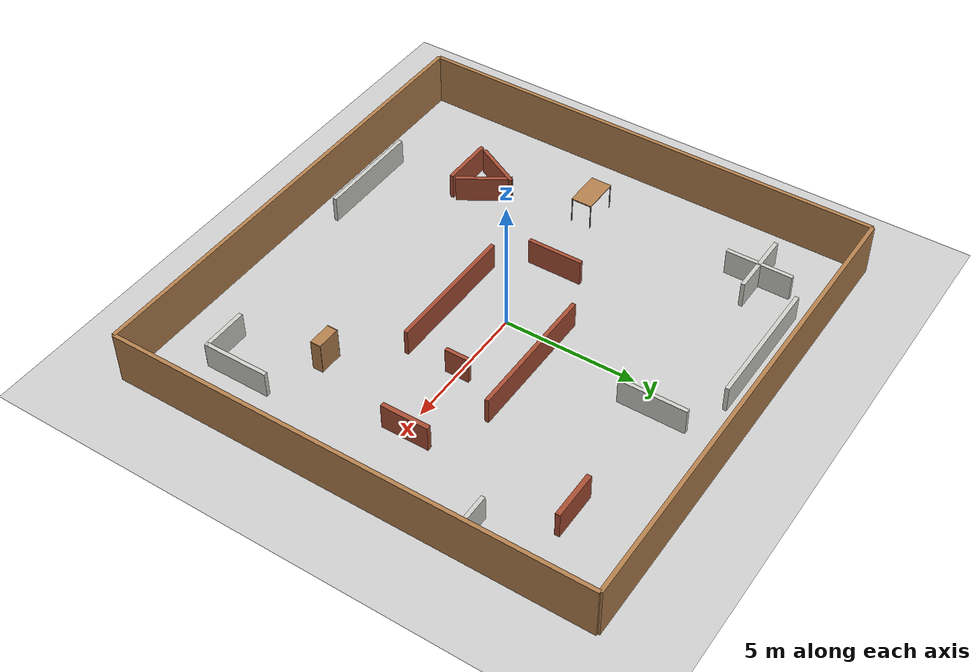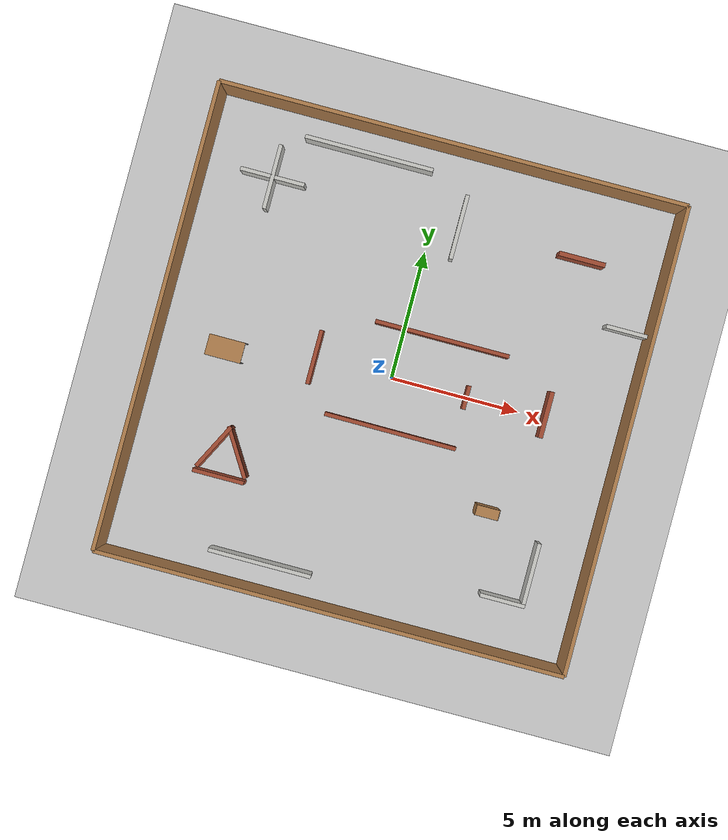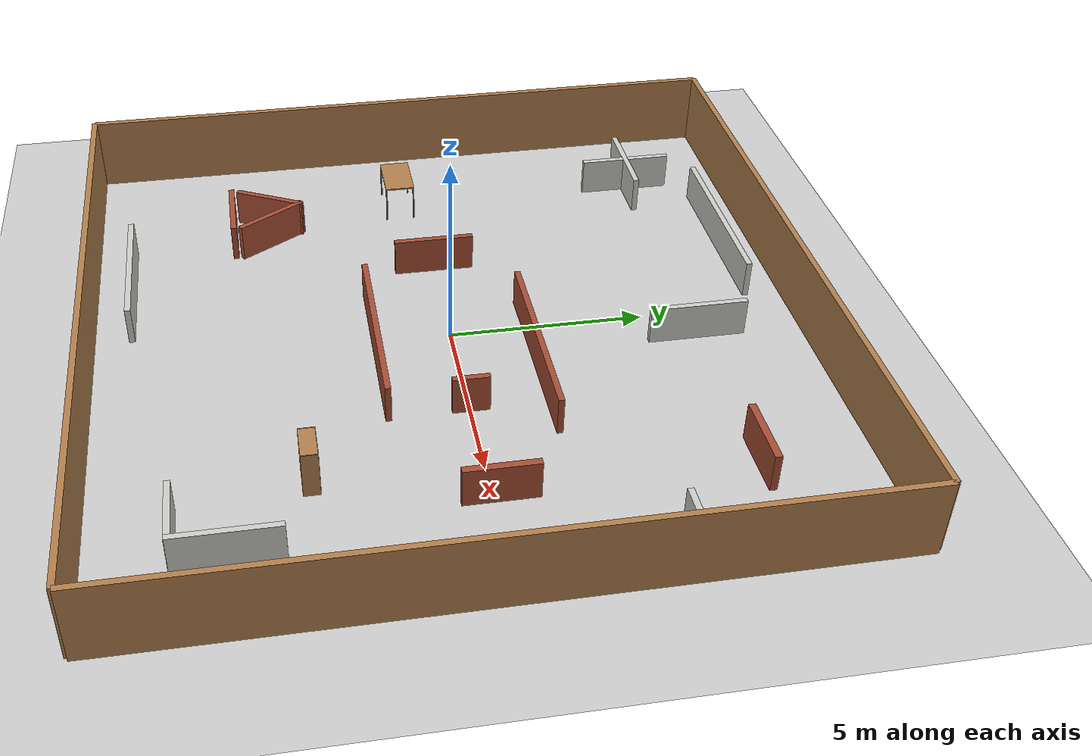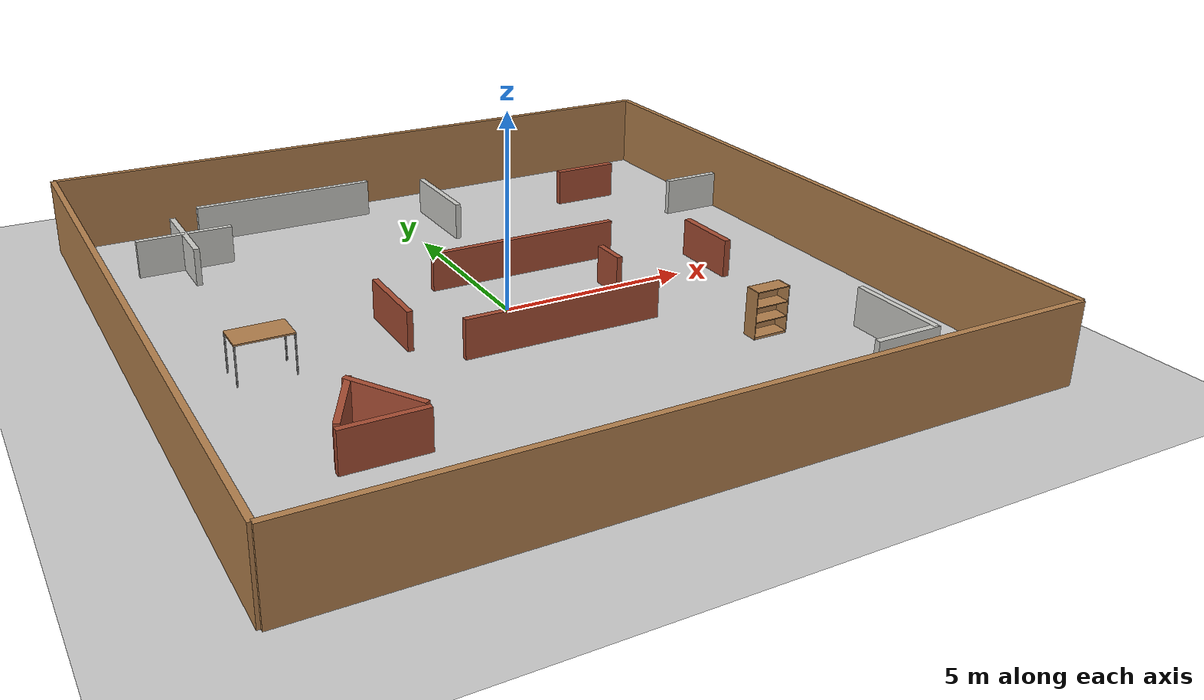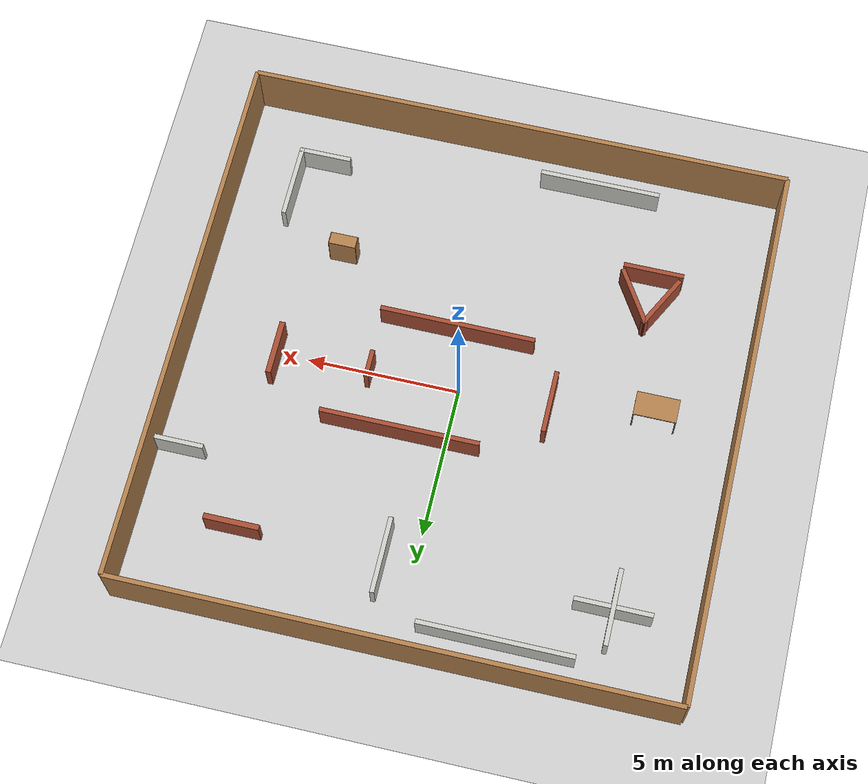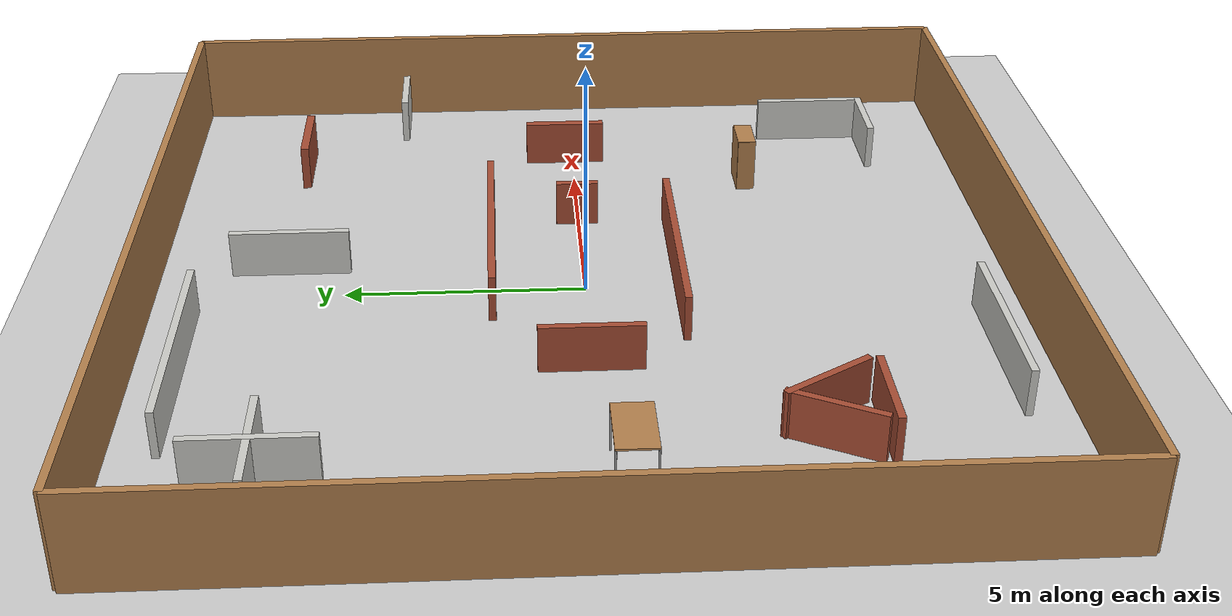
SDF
<sdf version="1.6">
 <world name="default">
  <light name="sun" type="directional">
   <pose>0 0 10 0 -0 0</pose>
   <diffuse>0.8 0.8 0.8 1</diffuse>
   <specular>0.1 0.1 0.1 1</specular>
   <attenuation>
    <range>1000</range>
    <constant>0.9</constant>
    <linear>0.01</linear>
    <quadratic>0.001</quadratic>
   </attenuation>
   <direction>-0.5 0.5 -1</direction>
  </light>
  <model name="ground_plane">
   <static>1</static>
   <link name="link">
    <collision name="collision">
     <geometry><plane><normal>0 0 1</normal><size>100 100</size></plane></geometry>
     <surface><friction><ode><mu>100</mu><mu2>50</mu2></ode></friction></surface>
    </collision>
    <visual name="visual">
     <cast_shadows>0</cast_shadows>
     <geometry><plane><normal>0 0 1</normal><size>100 100</size></plane></geometry>
     <material>
      <script><uri>file://media/materials/scripts/gazebo.material</uri><name>Gazebo/Grey</name></script>
     </material>
    </visual>
   </link>
  </model>
  <gravity>0 0 -9.8</gravity>
  <magnetic_field>6e-06 2.3e-05 -4.2e-05</magnetic_field>
  <atmosphere type="adiabatic"/>
  <physics name="default_physics" default="0" type="ode">
   <max_step_size>0.001</max_step_size>
   <real_time_factor>1</real_time_factor>
   <real_time_update_rate>1000</real_time_update_rate>
  </physics>
  <scene><ambient>0.4 0.4 0.4 1</ambient><background>0.7 0.7 0.7 1</background><shadows>1</shadows></scene>
  <spherical_coordinates>
   <surface_model>EARTH_WGS84</surface_model>
   <latitude_deg>0</latitude_deg>
   <longitude_deg>0</longitude_deg>
   <elevation>0</elevation>
   <heading_deg>0</heading_deg>
  </spherical_coordinates>
  <model name="box">
   <link name="Wall_15">
    <pose>1.475783 1.940209 0 0 -0 0</pose>
    <visual name="Wall_15_Visual">
     <pose>0 0 0.5 0 -0 0</pose>
     <geometry><box><size>5.220829 0.15 1</size></box></geometry>
     <material>
      <script><uri>file://media/materials/scripts/gazebo.material</uri><name>Gazebo/Bricks</name></script>
      <ambient>1 1 1 1</ambient>
      <diffuse>1 1 1 1</diffuse>
      <specular>0.2 0.2 0.2 1</specular>
      <emissive>0 0 0 1</emissive>
     </material>
     <meta><layer>0</layer></meta>
    </visual>
    <collision name="Wall_15_Collision">
     <pose>0 0 0.5 0 -0 0</pose>
     <geometry><box><size>1.2678 0.15 1</size></box></geometry>
     <surface>
      <friction>
       <ode><mu>1</mu><mu2>1</mu2><fdir1>0 0 0</fdir1><slip1>0</slip1><slip2>0</slip2></ode>
       <torsional>
        <coefficient>1</coefficient>
        <patch_radius>0</patch_radius>
        <surface_radius>0</surface_radius>
        <use_patch_radius>1</use_patch_radius>
        <ode><slip>0</slip></ode>
       </torsional>
      </friction>
      <bounce><restitution_coefficient>0</restitution_coefficient><threshold>1e+06</threshold></bounce>
      <contact>
       <collide_without_contact>0</collide_without_contact>
       <collide_without_contact_bitmask>1</collide_without_contact_bitmask>
       <collide_bitmask>1</collide_bitmask>
       <ode>
        <soft_cfm>0</soft_cfm>
        <soft_erp>0.2</soft_erp>
        <kp>1e+13</kp>
        <kd>1</kd>
        <max_vel>0.01</max_vel>
        <min_depth>0</min_depth>
       </ode>
       <bullet>
        <split_impulse>1</split_impulse>
        <split_impulse_penetration_threshold>-0.01</split_impulse_penetration_threshold>
        <soft_cfm>0</soft_cfm>
        <soft_erp>0.2</soft_erp>
        <kp>1e+13</kp>
        <kd>1</kd>
       </bullet>
      </contact>
     </surface>
    </collision>
   </link>
   <link name="Wall_16">
    <pose>2.921350 0.033581 0 0 0 -1.5700</pose>
    <visual name="Wall_16_Visual">
     <pose>0 0 0.5 0 -0 0</pose>
     <geometry><box><size>0.917149 0.15 1</size></box></geometry>
     <material>
      <script><uri>file://media/materials/scripts/gazebo.material</uri><name>Gazebo/Bricks</name></script>
      <ambient>1 1 1 1</ambient>
      <diffuse>1 1 1 1</diffuse>
      <specular>0.2 0.2 0.2 1</specular>
      <emissive>0 0 0 1</emissive>
     </material>
     <meta><layer>0</layer></meta>
    </visual>
    <collision name="Wall_16_Collision">
     <pose>0 0 0.5 0 -0 0</pose>
     <geometry><box><size>0.965005 0.15 1</size></box></geometry>
     <surface>
      <friction>
       <ode><mu>1</mu><mu2>1</mu2><fdir1>0 0 0</fdir1><slip1>0</slip1><slip2>0</slip2></ode>
       <torsional>
        <coefficient>1</coefficient>
        <patch_radius>0</patch_radius>
        <surface_radius>0</surface_radius>
        <use_patch_radius>1</use_patch_radius>
        <ode><slip>0</slip></ode>
       </torsional>
      </friction>
      <bounce><restitution_coefficient>0</restitution_coefficient><threshold>1e+06</threshold></bounce>
      <contact>
       <collide_without_contact>0</collide_without_contact>
       <collide_without_contact_bitmask>1</collide_without_contact_bitmask>
       <collide_bitmask>1</collide_bitmask>
       <ode>
        <soft_cfm>0</soft_cfm>
        <soft_erp>0.2</soft_erp>
        <kp>1e+13</kp>
        <kd>1</kd>
        <max_vel>0.01</max_vel>
        <min_depth>0</min_depth>
       </ode>
       <bullet>
        <split_impulse>1</split_impulse>
        <split_impulse_penetration_threshold>-0.01</split_impulse_penetration_threshold>
        <soft_cfm>0</soft_cfm>
        <soft_erp>0.2</soft_erp>
        <kp>1e+13</kp>
        <kd>1</kd>
       </bullet>
      </contact>
     </surface>
    </collision>
   </link>
   <link name="Wall_17">
    <pose>0.475783 -1.940209 0 0 -0 3.138000</pose>
    <visual name="Wall_17_Visual">
     <pose>0 0 0.5 0 -0 0</pose>
     <geometry><box><size>5.119226 0.15 1</size></box></geometry>
     <material>
      <script><uri>file://media/materials/scripts/gazebo.material</uri><name>Gazebo/Bricks</name></script>
      <ambient>1 1 1 1</ambient>
      <diffuse>1 1 1 1</diffuse>
      <specular>0.2 0.2 0.2 1</specular>
      <emissive>0 0 0 1</emissive>
     </material>
     <meta><layer>0</layer></meta>
    </visual>
    <collision name="Wall_17_Collision">
     <pose>0 0 0.5 0 -0 0</pose>
     <geometry><box><size>1.25 0.15 1</size></box></geometry>
     <surface>
      <friction>
       <ode><mu>1</mu><mu2>1</mu2><fdir1>0 0 0</fdir1><slip1>0</slip1><slip2>0</slip2></ode>
       <torsional>
        <coefficient>1</coefficient>
        <patch_radius>0</patch_radius>
        <surface_radius>0</surface_radius>
        <use_patch_radius>1</use_patch_radius>
        <ode><slip>0</slip></ode>
       </torsional>
      </friction>
      <bounce><restitution_coefficient>0</restitution_coefficient><threshold>1e+06</threshold></bounce>
      <contact>
       <collide_without_contact>0</collide_without_contact>
       <collide_without_contact_bitmask>1</collide_without_contact_bitmask>
       <collide_bitmask>1</collide_bitmask>
       <ode>
        <soft_cfm>0</soft_cfm>
        <soft_erp>0.2</soft_erp>
        <kp>1e+13</kp>
        <kd>1</kd>
        <max_vel>0.01</max_vel>
        <min_depth>0</min_depth>
       </ode>
       <bullet>
        <split_impulse>1</split_impulse>
        <split_impulse_penetration_threshold>-0.01</split_impulse_penetration_threshold>
        <soft_cfm>0</soft_cfm>
        <soft_erp>0.2</soft_erp>
        <kp>1e+13</kp>
        <kd>1</kd>
       </bullet>
      </contact>
     </surface>
    </collision>
   </link>
   <link name="Wall_18">
    <pose>-3.004989 0.029598 0 0 -0 1.5700</pose>
    <visual name="Wall_18_Visual">
     <pose>0 0 0.5 0 -0 0</pose>
     <geometry><box><size>2.101995 0.15 1</size></box></geometry>
     <material>
      <script><uri>file://media/materials/scripts/gazebo.material</uri><name>Gazebo/Bricks</name></script>
      <ambient>1 1 1 1</ambient>
      <diffuse>1 1 1 1</diffuse>
      <specular>0.2 0.2 0.2 1</specular>
      <emissive>0 0 0 1</emissive>
     </material>
     <meta><layer>0</layer></meta>
    </visual>
    <collision name="Wall_18_Collision">
     <pose>0 0 0.5 0 -0 0</pose>
     <geometry><box><size>0.965005 0.15 1</size></box></geometry>
     <surface>
      <friction>
       <ode><mu>1</mu><mu2>1</mu2><fdir1>0 0 0</fdir1><slip1>0</slip1><slip2>0</slip2></ode>
       <torsional>
        <coefficient>1</coefficient>
        <patch_radius>0</patch_radius>
        <surface_radius>0</surface_radius>
        <use_patch_radius>1</use_patch_radius>
        <ode><slip>0</slip></ode>
       </torsional>
      </friction>
      <bounce><restitution_coefficient>0</restitution_coefficient><threshold>1e+06</threshold></bounce>
      <contact>
       <collide_without_contact>0</collide_without_contact>
       <collide_without_contact_bitmask>1</collide_without_contact_bitmask>
       <collide_bitmask>1</collide_bitmask>
       <ode>
        <soft_cfm>0</soft_cfm>
        <soft_erp>0.2</soft_erp>
        <kp>1e+13</kp>
        <kd>1</kd>
        <max_vel>0.01</max_vel>
        <min_depth>0</min_depth>
       </ode>
       <bullet>
        <split_impulse>1</split_impulse>
        <split_impulse_penetration_threshold>-0.01</split_impulse_penetration_threshold>
        <soft_cfm>0</soft_cfm>
        <soft_erp>0.2</soft_erp>
        <kp>1e+13</kp>
        <kd>1</kd>
       </bullet>
      </contact>
     </surface>
    </collision>
   </link>
   <link name="Wall_24">
    <pose>-5.800564 -4.199884 0 0 -0 1.09459</pose>
    <visual name="Wall_24_Visual">
     <pose>0 0 0.5 0 -0 0</pose>
     <geometry><box><size>1.97704 0.15 1</size></box></geometry>
     <material>
      <script><uri>file://media/materials/scripts/gazebo.material</uri><name>Gazebo/Bricks</name></script>
      <ambient>1 1 1 1</ambient>
      <diffuse>1 1 1 1</diffuse>
      <specular>0.2 0.2 0.2 1</specular>
      <emissive>0 0 0 1</emissive>
     </material>
     <meta><layer>0</layer></meta>
    </visual>
    <collision name="Wall_24_Collision">
     <pose>0 0 0.5 0 -0 0</pose>
     <geometry><box><size>1.97704 0.15 1</size></box></geometry>
     <surface>
      <friction>
       <ode><mu>1</mu><mu2>1</mu2><fdir1>0 0 0</fdir1><slip1>0</slip1><slip2>0</slip2></ode>
       <torsional>
        <coefficient>1</coefficient>
        <patch_radius>0</patch_radius>
        <surface_radius>0</surface_radius>
        <use_patch_radius>1</use_patch_radius>
        <ode><slip>0</slip></ode>
       </torsional>
      </friction>
      <bounce><restitution_coefficient>0</restitution_coefficient><threshold>1e+06</threshold></bounce>
      <contact>
       <collide_without_contact>0</collide_without_contact>
       <collide_without_contact_bitmask>1</collide_without_contact_bitmask>
       <collide_bitmask>1</collide_bitmask>
       <ode>
        <soft_cfm>0</soft_cfm>
        <soft_erp>0.2</soft_erp>
        <kp>1e+13</kp>
        <kd>1</kd>
        <max_vel>0.01</max_vel>
        <min_depth>0</min_depth>
       </ode>
       <bullet>
        <split_impulse>1</split_impulse>
        <split_impulse_penetration_threshold>-0.01</split_impulse_penetration_threshold>
        <soft_cfm>0</soft_cfm>
        <soft_erp>0.2</soft_erp>
        <kp>1e+13</kp>
        <kd>1</kd>
       </bullet>
      </contact>
     </surface>
    </collision>
   </link>
   <link name="Wall_25">
    <pose>-4.900564 -4.199884 0 0 0 -1.01325</pose>
    <visual name="Wall_25_Visual">
     <pose>0 0 0.5 0 -0 0</pose>
     <geometry><box><size>2.06356 0.15 1</size></box></geometry>
     <material>
      <script><uri>file://media/materials/scripts/gazebo.material</uri><name>Gazebo/Bricks</name></script>
      <ambient>1 1 1 1</ambient>
      <diffuse>1 1 1 1</diffuse>
      <specular>0.2 0.2 0.2 1</specular>
      <emissive>0 0 0 1</emissive>
     </material>
     <meta><layer>0</layer></meta>
    </visual>
    <collision name="Wall_25_Collision">
     <pose>0 0 0.5 0 -0 0</pose>
     <geometry><box><size>2.06356 0.15 1</size></box></geometry>
     <surface>
      <friction>
       <ode><mu>1</mu><mu2>1</mu2><fdir1>0 0 0</fdir1><slip1>0</slip1><slip2>0</slip2></ode>
       <torsional>
        <coefficient>1</coefficient>
        <patch_radius>0</patch_radius>
        <surface_radius>0</surface_radius>
        <use_patch_radius>1</use_patch_radius>
        <ode><slip>0</slip></ode>
       </torsional>
      </friction>
      <bounce><restitution_coefficient>0</restitution_coefficient><threshold>1e+06</threshold></bounce>
      <contact>
       <collide_without_contact>0</collide_without_contact>
       <collide_without_contact_bitmask>1</collide_without_contact_bitmask>
       <collide_bitmask>1</collide_bitmask>
       <ode>
        <soft_cfm>0</soft_cfm>
        <soft_erp>0.2</soft_erp>
        <kp>1e+13</kp>
        <kd>1</kd>
        <max_vel>0.01</max_vel>
        <min_depth>0</min_depth>
       </ode>
       <bullet>
        <split_impulse>1</split_impulse>
        <split_impulse_penetration_threshold>-0.01</split_impulse_penetration_threshold>
        <soft_cfm>0</soft_cfm>
        <soft_erp>0.2</soft_erp>
        <kp>1e+13</kp>
        <kd>1</kd>
       </bullet>
      </contact>
     </surface>
    </collision>
   </link>
   <link name="Wall_26">
    <pose>-5.350564 -5.249884 0 0 -0 3.14159</pose>
    <visual name="Wall_26_Visual">
     <pose>0 0 0.5 0 -0 0</pose>
     <geometry><box><size>2 0.15 1</size></box></geometry>
     <material>
      <script><uri>file://media/materials/scripts/gazebo.material</uri><name>Gazebo/Bricks</name></script>
      <ambient>1 1 1 1</ambient>
      <diffuse>1 1 1 1</diffuse>
      <specular>0.2 0.2 0.2 1</specular>
      <emissive>0 0 0 1</emissive>
     </material>
     <meta><layer>0</layer></meta>
    </visual>
    <collision name="Wall_26_Collision">
     <pose>0 0 0.5 0 -0 0</pose>
     <geometry><box><size>2 0.15 1</size></box></geometry>
     <surface>
      <friction>
       <ode><mu>1</mu><mu2>1</mu2><fdir1>0 0 0</fdir1><slip1>0</slip1><slip2>0</slip2></ode>
       <torsional>
        <coefficient>1</coefficient>
        <patch_radius>0</patch_radius>
        <surface_radius>0</surface_radius>
        <use_patch_radius>1</use_patch_radius>
        <ode><slip>0</slip></ode>
       </torsional>
      </friction>
      <bounce><restitution_coefficient>0</restitution_coefficient><threshold>1e+06</threshold></bounce>
      <contact>
       <collide_without_contact>0</collide_without_contact>
       <collide_without_contact_bitmask>1</collide_without_contact_bitmask>
       <collide_bitmask>1</collide_bitmask>
       <ode>
        <soft_cfm>0</soft_cfm>
        <soft_erp>0.2</soft_erp>
        <kp>1e+13</kp>
        <kd>1</kd>
        <max_vel>0.01</max_vel>
        <min_depth>0</min_depth>
       </ode>
       <bullet>
        <split_impulse>1</split_impulse>
        <split_impulse_penetration_threshold>-0.01</split_impulse_penetration_threshold>
        <soft_cfm>0</soft_cfm>
        <soft_erp>0.2</soft_erp>
        <kp>1e+13</kp>
        <kd>1</kd>
       </bullet>
      </contact>
     </surface>
    </collision>
   </link>
   <link name="Wall_28">
    <pose>6.200000 -7 0 0 -0 0</pose>
    <visual name="Wall_28_Visual">
     <pose>0 0 0.5 0 -0 0</pose>
     <geometry><box><size>1.75 0.15 1</size></box></geometry>
     <material>
      <script><uri>file://media/materials/scripts/gazebo.material</uri><name>Gazebo/CeilingTiled</name></script>
      <ambient>1 1 1 1</ambient>
      <diffuse>1 1 1 1</diffuse>
      <specular>0 0 0 1</specular>
      <emissive>0 0 0 1</emissive>
     </material>
     <meta><layer>0</layer></meta>
    </visual>
    <collision name="Wall_28_Collision">
     <pose>0 0 0.5 0 -0 0</pose>
     <geometry><box><size>1.75 0.15 1</size></box></geometry>
     <surface>
      <friction>
       <ode><mu>1</mu><mu2>1</mu2><fdir1>0 0 0</fdir1><slip1>0</slip1><slip2>0</slip2></ode>
       <torsional>
        <coefficient>1</coefficient>
        <patch_radius>0</patch_radius>
        <surface_radius>0</surface_radius>
        <use_patch_radius>1</use_patch_radius>
        <ode><slip>0</slip></ode>
       </torsional>
      </friction>
      <bounce><restitution_coefficient>0</restitution_coefficient><threshold>1e+06</threshold></bounce>
      <contact>
       <collide_without_contact>0</collide_without_contact>
       <collide_without_contact_bitmask>1</collide_without_contact_bitmask>
       <collide_bitmask>1</collide_bitmask>
       <ode>
        <soft_cfm>0</soft_cfm>
        <soft_erp>0.2</soft_erp>
        <kp>1e+13</kp>
        <kd>1</kd>
        <max_vel>0.01</max_vel>
        <min_depth>0</min_depth>
       </ode>
       <bullet>
        <split_impulse>1</split_impulse>
        <split_impulse_penetration_threshold>-0.01</split_impulse_penetration_threshold>
        <soft_cfm>0</soft_cfm>
        <soft_erp>0.2</soft_erp>
        <kp>1e+13</kp>
        <kd>1</kd>
       </bullet>
      </contact>
     </surface>
    </collision>
   </link>
   <link name="Wall_29">
    <pose>7 -5.820000 0 0 -0 1.5708</pose>
    <visual name="Wall_29_Visual">
     <pose>0 0 0.5 0 -0 0</pose>
     <geometry><box><size>2.5 0.15 1</size></box></geometry>
     <material>
      <script><uri>file://media/materials/scripts/gazebo.material</uri><name>Gazebo/CeilingTiled</name></script>
      <ambient>1 1 1 1</ambient>
      <diffuse>1 1 1 1</diffuse>
      <specular>0 0 0 1</specular>
      <emissive>0 0 0 1</emissive>
     </material>
     <meta><layer>0</layer></meta>
    </visual>
    <collision name="Wall_29_Collision">
     <pose>0 0 0.5 0 -0 0</pose>
     <geometry><box><size>2.5 0.15 1</size></box></geometry>
     <surface>
      <friction>
       <ode><mu>1</mu><mu2>1</mu2><fdir1>0 0 0</fdir1><slip1>0</slip1><slip2>0</slip2></ode>
       <torsional>
        <coefficient>1</coefficient>
        <patch_radius>0</patch_radius>
        <surface_radius>0</surface_radius>
        <use_patch_radius>1</use_patch_radius>
        <ode><slip>0</slip></ode>
       </torsional>
      </friction>
      <bounce><restitution_coefficient>0</restitution_coefficient><threshold>1e+06</threshold></bounce>
      <contact>
       <collide_without_contact>0</collide_without_contact>
       <collide_without_contact_bitmask>1</collide_without_contact_bitmask>
       <collide_bitmask>1</collide_bitmask>
       <ode>
        <soft_cfm>0</soft_cfm>
        <soft_erp>0.2</soft_erp>
        <kp>1e+13</kp>
        <kd>1</kd>
        <max_vel>0.01</max_vel>
        <min_depth>0</min_depth>
       </ode>
       <bullet>
        <split_impulse>1</split_impulse>
        <split_impulse_penetration_threshold>-0.01</split_impulse_penetration_threshold>
        <soft_cfm>0</soft_cfm>
        <soft_erp>0.2</soft_erp>
        <kp>1e+13</kp>
        <kd>1</kd>
       </bullet>
      </contact>
     </surface>
    </collision>
   </link>
   <link name="Wall_30">
    <pose>-3 -8 0 0 -0 0</pose>
    <visual name="Wall_30_Visual">
     <pose>0 0 0.5 0 -0 0</pose>
     <geometry><box><size>4 0.15 1</size></box></geometry>
     <material>
      <script><uri>file://media/materials/scripts/gazebo.material</uri><name>Gazebo/CeilingTiled</name></script>
      <ambient>1 1 1 1</ambient>
      <diffuse>1 1 1 1</diffuse>
      <specular>0 0 0 1</specular>
      <emissive>0 0 0 1</emissive>
     </material>
     <meta><layer>0</layer></meta>
    </visual>
    <collision name="Wall_30_Collision">
     <pose>0 0 0.5 0 -0 0</pose>
     <geometry><box><size>4 0.15 1</size></box></geometry>
     <surface>
      <friction>
       <ode><mu>1</mu><mu2>1</mu2><fdir1>0 0 0</fdir1><slip1>0</slip1><slip2>0</slip2></ode>
       <torsional>
        <coefficient>1</coefficient>
        <patch_radius>0</patch_radius>
        <surface_radius>0</surface_radius>
        <use_patch_radius>1</use_patch_radius>
        <ode><slip>0</slip></ode>
       </torsional>
      </friction>
      <bounce><restitution_coefficient>0</restitution_coefficient><threshold>1e+06</threshold></bounce>
      <contact>
       <collide_without_contact>0</collide_without_contact>
       <collide_without_contact_bitmask>1</collide_without_contact_bitmask>
       <collide_bitmask>1</collide_bitmask>
       <ode>
        <soft_cfm>0</soft_cfm>
        <soft_erp>0.2</soft_erp>
        <kp>1e+13</kp>
        <kd>1</kd>
        <max_vel>0.01</max_vel>
        <min_depth>0</min_depth>
       </ode>
       <bullet>
        <split_impulse>1</split_impulse>
        <split_impulse_penetration_threshold>-0.01</split_impulse_penetration_threshold>
        <soft_cfm>0</soft_cfm>
        <soft_erp>0.2</soft_erp>
        <kp>1e+13</kp>
        <kd>1</kd>
       </bullet>
      </contact>
     </surface>
    </collision>
   </link>
   <link name="Wall_31">
    <pose>-3 8 0 0 -0 0</pose>
    <visual name="Wall_31_Visual">
     <pose>0 0 0.5 0 -0 0</pose>
     <geometry><box><size>5 0.15 1</size></box></geometry>
     <material>
      <script><uri>file://media/materials/scripts/gazebo.material</uri><name>Gazebo/CeilingTiled</name></script>
      <ambient>1 1 1 1</ambient>
      <diffuse>1 1 1 1</diffuse>
      <specular>0 0 0 1</specular>
      <emissive>0 0 0 1</emissive>
     </material>
     <meta><layer>0</layer></meta>
    </visual>
    <collision name="Wall_31_Collision">
     <pose>0 0 0.5 0 -0 0</pose>
     <geometry><box><size>5 0.15 1</size></box></geometry>
     <surface>
      <friction>
       <ode><mu>1</mu><mu2>1</mu2><fdir1>0 0 0</fdir1><slip1>0</slip1><slip2>0</slip2></ode>
       <torsional>
        <coefficient>1</coefficient>
        <patch_radius>0</patch_radius>
        <surface_radius>0</surface_radius>
        <use_patch_radius>1</use_patch_radius>
        <ode><slip>0</slip></ode>
       </torsional>
      </friction>
      <bounce><restitution_coefficient>0</restitution_coefficient><threshold>1e+06</threshold></bounce>
      <contact>
       <collide_without_contact>0</collide_without_contact>
       <collide_without_contact_bitmask>1</collide_without_contact_bitmask>
       <collide_bitmask>1</collide_bitmask>
       <ode>
        <soft_cfm>0</soft_cfm>
        <soft_erp>0.2</soft_erp>
        <kp>1e+13</kp>
        <kd>1</kd>
        <max_vel>0.01</max_vel>
        <min_depth>0</min_depth>
       </ode>
       <bullet>
        <split_impulse>1</split_impulse>
        <split_impulse_penetration_threshold>-0.01</split_impulse_penetration_threshold>
        <soft_cfm>0</soft_cfm>
        <soft_erp>0.2</soft_erp>
        <kp>1e+13</kp>
        <kd>1</kd>
       </bullet>
      </contact>
     </surface>
    </collision>
   </link>
   <link name="Wall_32">
    <pose>1.000564 6.17988 0 0 -0 1.5708</pose>
    <visual name="Wall_32_Visual">
     <pose>0 0 0.5 0 -0 0</pose>
     <geometry><box><size>2.5 0.15 1</size></box></geometry>
     <material>
      <script><uri>file://media/materials/scripts/gazebo.material</uri><name>Gazebo/CeilingTiled</name></script>
      <ambient>1 1 1 1</ambient>
      <diffuse>1 1 1 1</diffuse>
      <specular>0 0 0 1</specular>
      <emissive>0 0 0 1</emissive>
     </material>
     <meta><layer>0</layer></meta>
    </visual>
    <collision name="Wall_32_Collision">
     <pose>0 0 0.5 0 -0 0</pose>
     <geometry><box><size>2.5 0.15 1</size></box></geometry>
     <surface>
      <friction>
       <ode><mu>1</mu><mu2>1</mu2><fdir1>0 0 0</fdir1><slip1>0</slip1><slip2>0</slip2></ode>
       <torsional>
        <coefficient>1</coefficient>
        <patch_radius>0</patch_radius>
        <surface_radius>0</surface_radius>
        <use_patch_radius>1</use_patch_radius>
        <ode><slip>0</slip></ode>
       </torsional>
      </friction>
      <bounce><restitution_coefficient>0</restitution_coefficient><threshold>1e+06</threshold></bounce>
      <contact>
       <collide_without_contact>0</collide_without_contact>
       <collide_without_contact_bitmask>1</collide_without_contact_bitmask>
       <collide_bitmask>1</collide_bitmask>
       <ode>
        <soft_cfm>0</soft_cfm>
        <soft_erp>0.2</soft_erp>
        <kp>1e+13</kp>
        <kd>1</kd>
        <max_vel>0.01</max_vel>
        <min_depth>0</min_depth>
       </ode>
       <bullet>
        <split_impulse>1</split_impulse>
        <split_impulse_penetration_threshold>-0.01</split_impulse_penetration_threshold>
        <soft_cfm>0</soft_cfm>
        <soft_erp>0.2</soft_erp>
        <kp>1e+13</kp>
        <kd>1</kd>
       </bullet>
      </contact>
     </surface>
    </collision>
   </link>
   <link name="Wall_33">
    <pose>8.199436 4 0 0 -0 0</pose>
    <visual name="Wall_33_Visual">
     <pose>0 0 0.5 0 -0 0</pose>
     <geometry><box><size>1.75 0.15 1</size></box></geometry>
     <material>
      <script><uri>file://media/materials/scripts/gazebo.material</uri><name>Gazebo/CeilingTiled</name></script>
      <ambient>1 1 1 1</ambient>
      <diffuse>1 1 1 1</diffuse>
      <specular>0 0 0 1</specular>
      <emissive>0 0 0 1</emissive>
     </material>
     <meta><layer>0</layer></meta>
    </visual>
    <collision name="Wall_33_Collision">
     <pose>0 0 0.5 0 -0 0</pose>
     <geometry><box><size>1.75 0.15 1</size></box></geometry>
     <surface>
      <friction>
       <ode><mu>1</mu><mu2>1</mu2><fdir1>0 0 0</fdir1><slip1>0</slip1><slip2>0</slip2></ode>
       <torsional>
        <coefficient>1</coefficient>
        <patch_radius>0</patch_radius>
        <surface_radius>0</surface_radius>
        <use_patch_radius>1</use_patch_radius>
        <ode><slip>0</slip></ode>
       </torsional>
      </friction>
      <bounce><restitution_coefficient>0</restitution_coefficient><threshold>1e+06</threshold></bounce>
      <contact>
       <collide_without_contact>0</collide_without_contact>
       <collide_without_contact_bitmask>1</collide_without_contact_bitmask>
       <collide_bitmask>1</collide_bitmask>
       <ode>
        <soft_cfm>0</soft_cfm>
        <soft_erp>0.2</soft_erp>
        <kp>1e+13</kp>
        <kd>1</kd>
        <max_vel>0.01</max_vel>
        <min_depth>0</min_depth>
       </ode>
       <bullet>
        <split_impulse>1</split_impulse>
        <split_impulse_penetration_threshold>-0.01</split_impulse_penetration_threshold>
        <soft_cfm>0</soft_cfm>
        <soft_erp>0.2</soft_erp>
        <kp>1e+13</kp>
        <kd>1</kd>
       </bullet>
      </contact>
     </surface>
    </collision>
   </link>
   <link name="Wall_6">
    <pose>0 9 0 0 -0 0</pose>
    <visual name="Wall_6_Visual">
     <pose>0 0 1 0 -0 0</pose>
     <geometry><box><size>18 0.15 2</size></box></geometry>
     <material>
      <script><uri>file://media/materials/scripts/gazebo.material</uri><name>Gazebo/Wood</name></script>
      <ambient>1 1 1 1</ambient>
      <diffuse>1 1 1 1</diffuse>
      <specular>0.2 0.2 0.2 1</specular>
      <emissive>0 0 0 1</emissive>
     </material>
     <meta><layer>0</layer></meta>
    </visual>
    <collision name="Wall_6_Collision">
     <pose>0 0 1 0 -0 0</pose>
     <geometry><box><size>18 0.15 2</size></box></geometry>
     <surface>
      <friction>
       <ode><mu>1</mu><mu2>1</mu2><fdir1>0 0 0</fdir1><slip1>0</slip1><slip2>0</slip2></ode>
       <torsional>
        <coefficient>1</coefficient>
        <patch_radius>0</patch_radius>
        <surface_radius>0</surface_radius>
        <use_patch_radius>1</use_patch_radius>
        <ode><slip>0</slip></ode>
       </torsional>
      </friction>
      <bounce><restitution_coefficient>0</restitution_coefficient><threshold>1e+06</threshold></bounce>
      <contact>
       <collide_without_contact>0</collide_without_contact>
       <collide_without_contact_bitmask>1</collide_without_contact_bitmask>
       <collide_bitmask>1</collide_bitmask>
       <ode>
        <soft_cfm>0</soft_cfm>
        <soft_erp>0.2</soft_erp>
        <kp>1e+13</kp>
        <kd>1</kd>
        <max_vel>0.01</max_vel>
        <min_depth>0</min_depth>
       </ode>
       <bullet>
        <split_impulse>1</split_impulse>
        <split_impulse_penetration_threshold>-0.01</split_impulse_penetration_threshold>
        <soft_cfm>0</soft_cfm>
        <soft_erp>0.2</soft_erp>
        <kp>1e+13</kp>
        <kd>1</kd>
       </bullet>
      </contact>
     </surface>
    </collision>
   </link>
   <link name="Wall_7">
    <pose>9 0 0 0 0 -1.5708</pose>
    <visual name="Wall_7_Visual">
     <pose>0 0 1 0 -0 0</pose>
     <geometry><box><size>18 0.15 2</size></box></geometry>
     <material>
      <script><uri>file://media/materials/scripts/gazebo.material</uri><name>Gazebo/Wood</name></script>
      <ambient>1 1 1 1</ambient>
      <diffuse>1 1 1 1</diffuse>
      <specular>0.2 0.2 0.2 1</specular>
      <emissive>0 0 0 1</emissive>
     </material>
     <meta><layer>0</layer></meta>
    </visual>
    <collision name="Wall_7_Collision">
     <pose>0 0 1 0 -0 0</pose>
     <geometry><box><size>18 0.15 2</size></box></geometry>
     <surface>
      <friction>
       <ode><mu>1</mu><mu2>1</mu2><fdir1>0 0 0</fdir1><slip1>0</slip1><slip2>0</slip2></ode>
       <torsional>
        <coefficient>1</coefficient>
        <patch_radius>0</patch_radius>
        <surface_radius>0</surface_radius>
        <use_patch_radius>1</use_patch_radius>
        <ode><slip>0</slip></ode>
       </torsional>
      </friction>
      <bounce><restitution_coefficient>0</restitution_coefficient><threshold>1e+06</threshold></bounce>
      <contact>
       <collide_without_contact>0</collide_without_contact>
       <collide_without_contact_bitmask>1</collide_without_contact_bitmask>
       <collide_bitmask>1</collide_bitmask>
       <ode>
        <soft_cfm>0</soft_cfm>
        <soft_erp>0.2</soft_erp>
        <kp>1e+13</kp>
        <kd>1</kd>
        <max_vel>0.01</max_vel>
        <min_depth>0</min_depth>
       </ode>
       <bullet>
        <split_impulse>1</split_impulse>
        <split_impulse_penetration_threshold>-0.01</split_impulse_penetration_threshold>
        <soft_cfm>0</soft_cfm>
        <soft_erp>0.2</soft_erp>
        <kp>1e+13</kp>
        <kd>1</kd>
       </bullet>
      </contact>
     </surface>
    </collision>
   </link>
   <link name="Wall_8">
    <pose>0 -9 0 0 -0 3.14159</pose>
    <visual name="Wall_8_Visual">
     <pose>0 0 1 0 -0 0</pose>
     <geometry><box><size>18 0.15 2</size></box></geometry>
     <material>
      <script><uri>file://media/materials/scripts/gazebo.material</uri><name>Gazebo/Wood</name></script>
      <ambient>1 1 1 1</ambient>
      <diffuse>1 1 1 1</diffuse>
      <specular>0.2 0.2 0.2 1</specular>
      <emissive>0 0 0 1</emissive>
     </material>
     <meta><layer>0</layer></meta>
    </visual>
    <collision name="Wall_8_Collision">
     <pose>0 0 1 0 -0 0</pose>
     <geometry><box><size>18 0.15 2</size></box></geometry>
     <surface>
      <friction>
       <ode><mu>1</mu><mu2>1</mu2><fdir1>0 0 0</fdir1><slip1>0</slip1><slip2>0</slip2></ode>
       <torsional>
        <coefficient>1</coefficient>
        <patch_radius>0</patch_radius>
        <surface_radius>0</surface_radius>
        <use_patch_radius>1</use_patch_radius>
        <ode><slip>0</slip></ode>
       </torsional>
      </friction>
      <bounce><restitution_coefficient>0</restitution_coefficient><threshold>1e+06</threshold></bounce>
      <contact>
       <collide_without_contact>0</collide_without_contact>
       <collide_without_contact_bitmask>1</collide_without_contact_bitmask>
       <collide_bitmask>1</collide_bitmask>
       <ode>
        <soft_cfm>0</soft_cfm>
        <soft_erp>0.2</soft_erp>
        <kp>1e+13</kp>
        <kd>1</kd>
        <max_vel>0.01</max_vel>
        <min_depth>0</min_depth>
       </ode>
       <bullet>
        <split_impulse>1</split_impulse>
        <split_impulse_penetration_threshold>-0.01</split_impulse_penetration_threshold>
        <soft_cfm>0</soft_cfm>
        <soft_erp>0.2</soft_erp>
        <kp>1e+13</kp>
        <kd>1</kd>
       </bullet>
      </contact>
     </surface>
    </collision>
   </link>
   <link name="Wall_9">
    <pose>-9 0 0 0 -0 1.5708</pose>
    <visual name="Wall_9_Visual">
     <pose>0 0 1 0 -0 0</pose>
     <geometry><box><size>18 0.15 2</size></box></geometry>
     <material>
      <script><uri>file://media/materials/scripts/gazebo.material</uri><name>Gazebo/Wood</name></script>
      <ambient>1 1 1 1</ambient>
      <diffuse>1 1 1 1</diffuse>
      <specular>0.2 0.2 0.2 1</specular>
      <emissive>0 0 0 1</emissive>
     </material>
     <meta><layer>0</layer></meta>
    </visual>
    <collision name="Wall_9_Collision">
     <pose>0 0 1 0 -0 0</pose>
     <geometry><box><size>18 0.15 2</size></box></geometry>
     <surface>
      <friction>
       <ode><mu>1</mu><mu2>1</mu2><fdir1>0 0 0</fdir1><slip1>0</slip1><slip2>0</slip2></ode>
       <torsional>
        <coefficient>1</coefficient>
        <patch_radius>0</patch_radius>
        <surface_radius>0</surface_radius>
        <use_patch_radius>1</use_patch_radius>
        <ode><slip>0</slip></ode>
       </torsional>
      </friction>
      <bounce><restitution_coefficient>0</restitution_coefficient><threshold>1e+06</threshold></bounce>
      <contact>
       <collide_without_contact>0</collide_without_contact>
       <collide_without_contact_bitmask>1</collide_without_contact_bitmask>
       <collide_bitmask>1</collide_bitmask>
       <ode>
        <soft_cfm>0</soft_cfm>
        <soft_erp>0.2</soft_erp>
        <kp>1e+13</kp>
        <kd>1</kd>
        <max_vel>0.01</max_vel>
        <min_depth>0</min_depth>
       </ode>
       <bullet>
        <split_impulse>1</split_impulse>
        <split_impulse_penetration_threshold>-0.01</split_impulse_penetration_threshold>
        <soft_cfm>0</soft_cfm>
        <soft_erp>0.2</soft_erp>
        <kp>1e+13</kp>
        <kd>1</kd>
       </bullet>
      </contact>
     </surface>
    </collision>
   </link>
   <static>1</static>
   <pose>0.000564 -0.000118 0 0 -0 0</pose>
  </model>
  <model name="rotating_wall_11_13">
   <static>false</static>
   <pose>-6.3 6.2 0.5 0 0 0</pose>
   <link name="rotor_link">
    <inertial>
     <mass>12</mass>
     <inertia><ixx>2</ixx><ixy>0</ixy><ixz>0</ixz><iyy>2</iyy><iyz>0</iyz><izz>2</izz></inertia>
    </inertial>
    <gravity>0</gravity>
    <visual name="Wall_11_Visual">
     <geometry><box><size>2.5 0.15 1</size></box></geometry>
     <material>
      <script><uri>file://media/materials/scripts/gazebo.material</uri><name>Gazebo/CeilingTiled</name></script>
      <ambient>1 1 1 1</ambient>
      <diffuse>1 1 1 1</diffuse>
      <specular>0 0 0 1</specular>
      <emissive>0 0 0 1</emissive>
     </material>
    </visual>
    <collision name="Wall_11_Collision"><geometry><box><size>2.5 0.15 1</size></box></geometry></collision>
    <visual name="Wall_13_Visual">
     <pose>0 0 0 0 0 1.5708</pose>
     <geometry><box><size>2.5 0.15 1</size></box></geometry>
     <material>
      <script><uri>file://media/materials/scripts/gazebo.material</uri><name>Gazebo/CeilingTiled</name></script>
      <ambient>1 1 1 1</ambient>
      <diffuse>1 1 1 1</diffuse>
      <specular>0 0 0 1</specular>
      <emissive>0 0 0 1</emissive>
     </material>
    </visual>
    <collision name="Wall_13_Collision">
     <pose>0 0 0 0 0 1.5708</pose>
     <geometry><box><size>2.5 0.15 1</size></box></geometry>
    </collision>
   </link>
   <joint name="rotating_wall_11_13_joint" type="revolute">
    <parent>world</parent>
    <child>rotor_link</child>
    <axis><xyz>0 0 1</xyz></axis>
   </joint>
   <plugin name="rotating_wall_11_13_plugin" filename="librotating_wall_plugin.so">
    <joint_name>rotating_wall_11_13_joint</joint_name>
    <speed>1.1</speed>
    <force>80</force>
    <offset>0</offset>
    <continuous>true</continuous>
   </plugin>
  </model>
  <model name="sliding_wall_top_right">
   <static>false</static>
   <pose>5.8 6.2 0.5 0 0 0</pose>
   <link name="gate_panel">
    <inertial>
     <mass>8</mass>
     <inertia><ixx>1</ixx><ixy>0</ixy><ixz>0</ixz><iyy>1</iyy><iyz>0</iyz><izz>1</izz></inertia>
    </inertial>
    <gravity>0</gravity>
    <visual name="panel_visual">
     <geometry><box><size>1.8 0.18 1</size></box></geometry>
     <material>
      <script><uri>file://media/materials/scripts/gazebo.material</uri><name>Gazebo/Bricks</name></script>
      <ambient>1 1 1 1</ambient>
      <diffuse>1 1 1 1</diffuse>
      <specular>0.2 0.2 0.2 1</specular>
      <emissive>0 0 0 1</emissive>
     </material>
    </visual>
    <collision name="panel_collision">
     <geometry><box><size>1.8 0.18 1</size></box></geometry>
     <surface>
      <friction><ode><mu>1</mu><mu2>1</mu2></ode></friction>
      <contact><ode><kp>1e+13</kp><kd>1</kd><max_vel>0.01</max_vel><min_depth>0</min_depth></ode></contact>
     </surface>
    </collision>
   </link>
   <joint name="sliding_wall_top_right_joint" type="prismatic">
    <parent>world</parent>
    <child>gate_panel</child>
    <axis><xyz>1 0 0</xyz><limit><lower>-1.5</lower><upper>1.5</upper></limit></axis>
   </joint>
   <plugin name="sliding_wall_top_right_plugin" filename="librotating_wall_plugin.so">
    <joint_name>sliding_wall_top_right_joint</joint_name>
    <amplitude>1.3</amplitude>
    <speed>0.8</speed>
    <offset>0</offset>
    <phase>0</phase>
   </plugin>
  </model>
  <model name="bookshelf">
   <static>1</static>
   <link name="link">
    <inertial><mass>1</mass></inertial>
    <collision name="back">
     <pose>0 0.005 0.6 0 -0 0</pose>
     <geometry><box><size>0.9 0.01 1.2</size></box></geometry>
    </collision>
    <visual name="visual1">
     <pose>0 0.005 0.6 0 -0 0</pose>
     <geometry><box><size>0.9 0.01 1.2</size></box></geometry>
     <material>
      <script><uri>file://media/materials/scripts/gazebo.material</uri><name>Gazebo/Wood</name></script>
     </material>
    </visual>
    <collision name="left_side">
     <pose>0.45 -0.195 0.6 0 -0 0</pose>
     <geometry><box><size>0.02 0.4 1.2</size></box></geometry>
    </collision>
    <visual name="visual2">
     <pose>0.45 -0.195 0.6 0 -0 0</pose>
     <geometry><box><size>0.02 0.4 1.2</size></box></geometry>
     <material>
      <script><uri>file://media/materials/scripts/gazebo.material</uri><name>Gazebo/Wood</name></script>
     </material>
    </visual>
    <collision name="right_side">
     <pose>-0.45 -0.195 0.6 0 -0 0</pose>
     <geometry><box><size>0.02 0.4 1.2</size></box></geometry>
    </collision>
    <visual name="visual3">
     <pose>-0.45 -0.195 0.6 0 -0 0</pose>
     <geometry><box><size>0.02 0.4 1.2</size></box></geometry>
     <material>
      <script><uri>file://media/materials/scripts/gazebo.material</uri><name>Gazebo/Wood</name></script>
     </material>
    </visual>
    <collision name="bottom">
     <pose>0 -0.195 0.03 0 -0 0</pose>
     <geometry><box><size>0.88 0.4 0.06</size></box></geometry>
    </collision>
    <visual name="visual4">
     <pose>0 -0.195 0.03 0 -0 0</pose>
     <geometry><box><size>0.88 0.4 0.06</size></box></geometry>
     <material>
      <script><uri>file://media/materials/scripts/gazebo.material</uri><name>Gazebo/Wood</name></script>
     </material>
    </visual>
    <collision name="top">
     <pose>0 -0.195 1.19 0 -0 0</pose>
     <geometry><box><size>0.88 0.4 0.02</size></box></geometry>
    </collision>
    <visual name="visual5">
     <pose>0 -0.195 1.19 0 -0 0</pose>
     <geometry><box><size>0.88 0.4 0.02</size></box></geometry>
     <material>
      <script><uri>file://media/materials/scripts/gazebo.material</uri><name>Gazebo/Wood</name></script>
     </material>
    </visual>
    <collision name="low_shelf">
     <pose>0 -0.195 0.43 0 -0 0</pose>
     <geometry><box><size>0.88 0.4 0.02</size></box></geometry>
    </collision>
    <visual name="visual6">
     <pose>0 -0.195 0.43 0 -0 0</pose>
     <geometry><box><size>0.88 0.4 0.02</size></box></geometry>
     <material>
      <script><uri>file://media/materials/scripts/gazebo.material</uri><name>Gazebo/Wood</name></script>
     </material>
    </visual>
    <collision name="high_shelf">
     <pose>0 -0.195 0.8 0 -0 0</pose>
     <geometry><box><size>0.88 0.4 0.02</size></box></geometry>
    </collision>
    <visual name="visual7">
     <pose>0 -0.195 0.8 0 -0 0</pose>
     <geometry><box><size>0.88 0.4 0.02</size></box></geometry>
     <material>
      <script><uri>file://media/materials/scripts/gazebo.material</uri><name>Gazebo/Wood</name></script>
     </material>
    </visual>
   </link>
   <pose>4.78412 -3.73836 0 0 -0 0</pose>
  </model>
  <model name="table">
   <static>0</static>
   <link name="link">
    <collision name="surface">
     <pose>0 0 1 0 -0 0</pose>
     <geometry><box><size>1.5 0.8 0.03</size></box></geometry>
     <surface><friction><ode><mu>0.6</mu><mu2>0.6</mu2></ode></friction></surface>
    </collision>
    <visual name="visual1">
     <pose>0 0 1 0 -0 0</pose>
     <geometry><box><size>1.4 0.8 0.04</size></box></geometry>
     <material>
      <script><uri>file://media/materials/scripts/gazebo.material</uri><name>Gazebo/Wood</name></script>
     </material>
    </visual>
    <collision name="front_left_leg">
     <pose>0.68 0.38 0.5 0 -0 0</pose>
     <geometry><cylinder><radius>0.02</radius><length>1</length></cylinder></geometry>
    </collision>
    <visual name="front_left_leg">
     <pose>0.68 0.38 0.5 0 -0 0</pose>
     <geometry><cylinder><radius>0.02</radius><length>1</length></cylinder></geometry>
     <material>
      <script><uri>file://media/materials/scripts/gazebo.material</uri><name>Gazebo/Grey</name></script>
     </material>
    </visual>
    <collision name="front_right_leg">
     <pose>0.68 -0.38 0.5 0 -0 0</pose>
     <geometry><cylinder><radius>0.02</radius><length>1</length></cylinder></geometry>
    </collision>
    <visual name="front_right_leg">
     <pose>0.68 -0.38 0.5 0 -0 0</pose>
     <geometry><cylinder><radius>0.02</radius><length>1</length></cylinder></geometry>
     <material>
      <script><uri>file://media/materials/scripts/gazebo.material</uri><name>Gazebo/Grey</name></script>
     </material>
    </visual>
    <collision name="back_right_leg">
     <pose>-0.68 -0.38 0.5 0 -0 0</pose>
     <geometry><cylinder><radius>0.02</radius><length>1</length></cylinder></geometry>
    </collision>
    <visual name="back_right_leg">
     <pose>-0.68 -0.38 0.5 0 -0 0</pose>
     <geometry><cylinder><radius>0.02</radius><length>1</length></cylinder></geometry>
     <material>
      <script><uri>file://media/materials/scripts/gazebo.material</uri><name>Gazebo/Grey</name></script>
     </material>
    </visual>
    <collision name="back_left_leg">
     <pose>-0.68 0.38 0.5 0 -0 0</pose>
     <geometry><cylinder><radius>0.02</radius><length>1</length></cylinder></geometry>
    </collision>
    <visual name="back_left_leg">
     <pose>-0.68 0.38 0.5 0 -0 0</pose>
     <geometry><cylinder><radius>0.02</radius><length>1</length></cylinder></geometry>
     <material>
      <script><uri>file://media/materials/scripts/gazebo.material</uri><name>Gazebo/Grey</name></script>
     </material>
    </visual>
    <inertial>
     <inertia><ixx>1</ixx><ixy>0</ixy><ixz>0</ixz><iyy>1</iyy><iyz>0</iyz><izz>1</izz></inertia>
     <mass>1</mass>
    </inertial>
   </link>
   <pose>-6.34248 -0.532954 -9e-06 1e-06 -1e-06 0</pose>
  </model>
  <model name="sliding_wall_right">
   <static>false</static>
   <pose>6.000000 0.179998 0.5 0 0 1.570801</pose>
   <link name="gate_panel">
    <inertial>
     <mass>8</mass>
     <inertia><ixx>1</ixx><ixy>0</ixy><ixz>0</ixz><iyy>1</iyy><iyz>0</iyz><izz>1</izz></inertia>
    </inertial>
    <gravity>0</gravity>
    <visual name="panel_visual">
     <geometry><box><size>1.8 0.18 1</size></box></geometry>
     <material>
      <script><uri>file://media/materials/scripts/gazebo.material</uri><name>Gazebo/Bricks</name></script>
      <ambient>1 1 1 1</ambient>
      <diffuse>1 1 1 1</diffuse>
      <specular>0.2 0.2 0.2 1</specular>
      <emissive>0 0 0 1</emissive>
     </material>
    </visual>
    <collision name="panel_collision">
     <geometry><box><size>1.8 0.18 1</size></box></geometry>
     <surface>
      <friction><ode><mu>1</mu><mu2>1</mu2></ode></friction>
      <contact><ode><kp>1e+13</kp><kd>1</kd><max_vel>0.01</max_vel><min_depth>0</min_depth></ode></contact>
     </surface>
    </collision>
   </link>
   <joint name="sliding_wall_right_joint" type="prismatic">
    <parent>world</parent>
    <child>gate_panel</child>
    <axis><xyz>1 0 0</xyz><limit><lower>-1.5</lower><upper>1.5</upper></limit></axis>
   </joint>
   <plugin name="sliding_wall_right_plugin" filename="librotating_wall_plugin.so">
    <joint_name>sliding_wall_right_joint</joint_name>
    <amplitude>1.3</amplitude>
    <speed>0.8</speed>
    <offset>0</offset>
    <phase>0</phase>
   </plugin>
  </model>
 </world>
</sdf>
